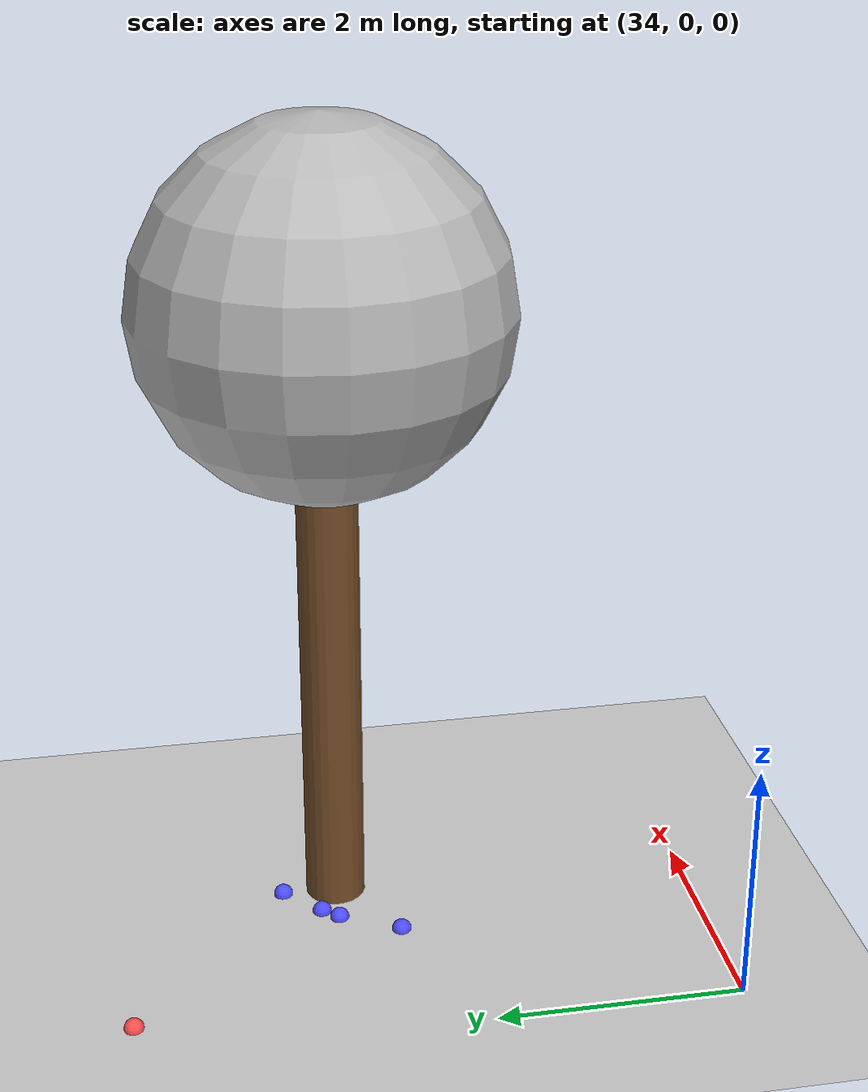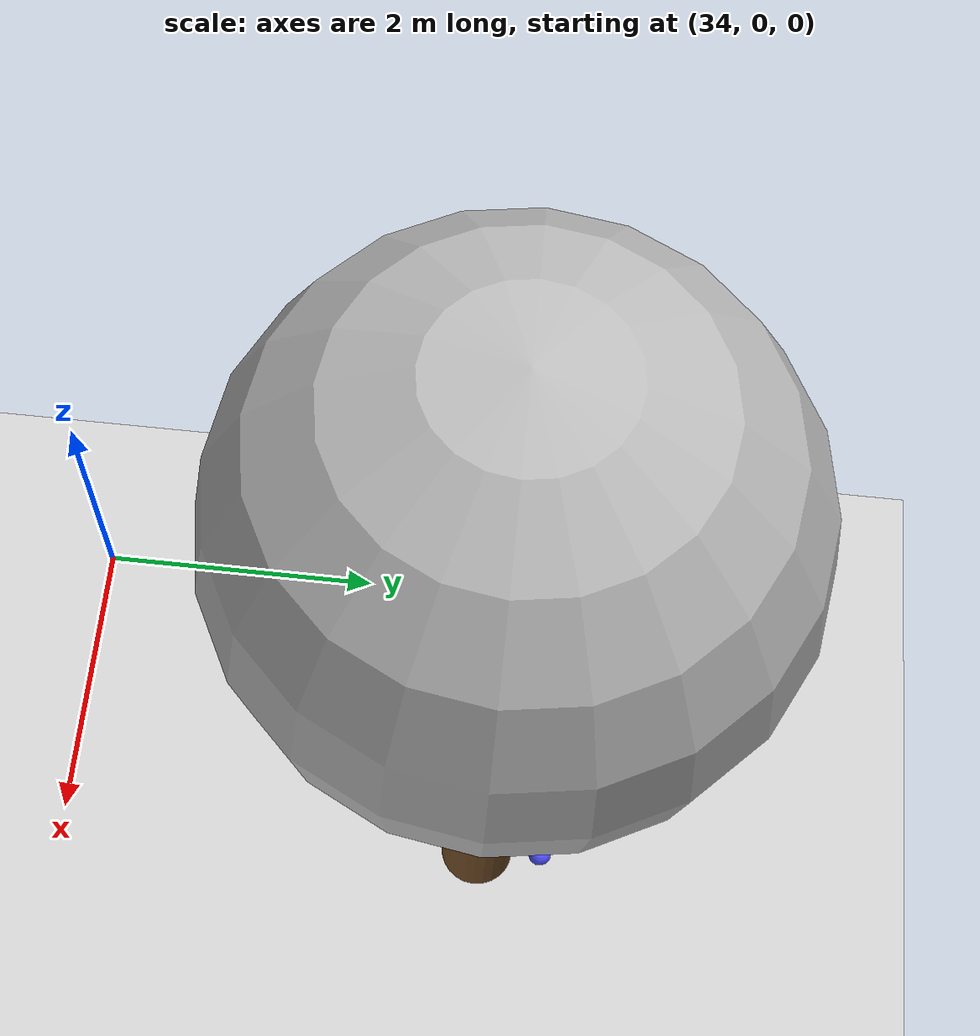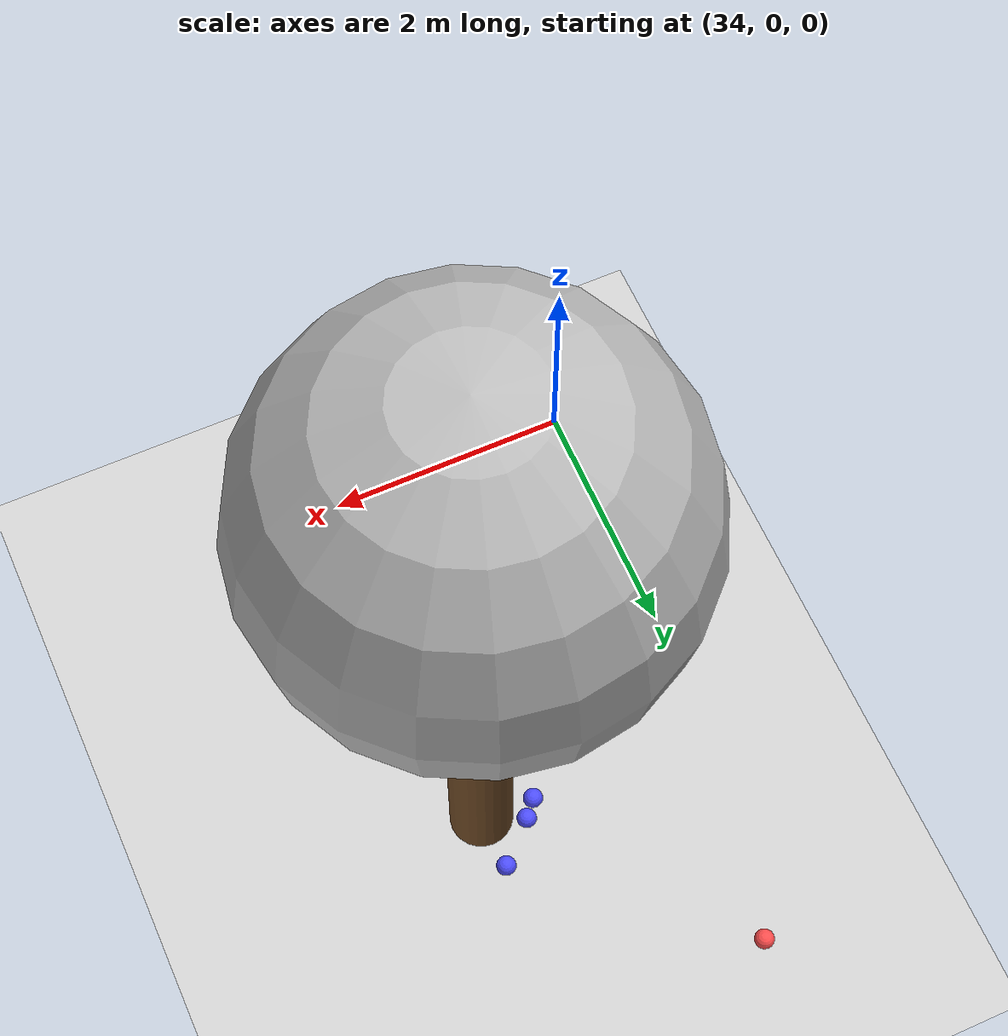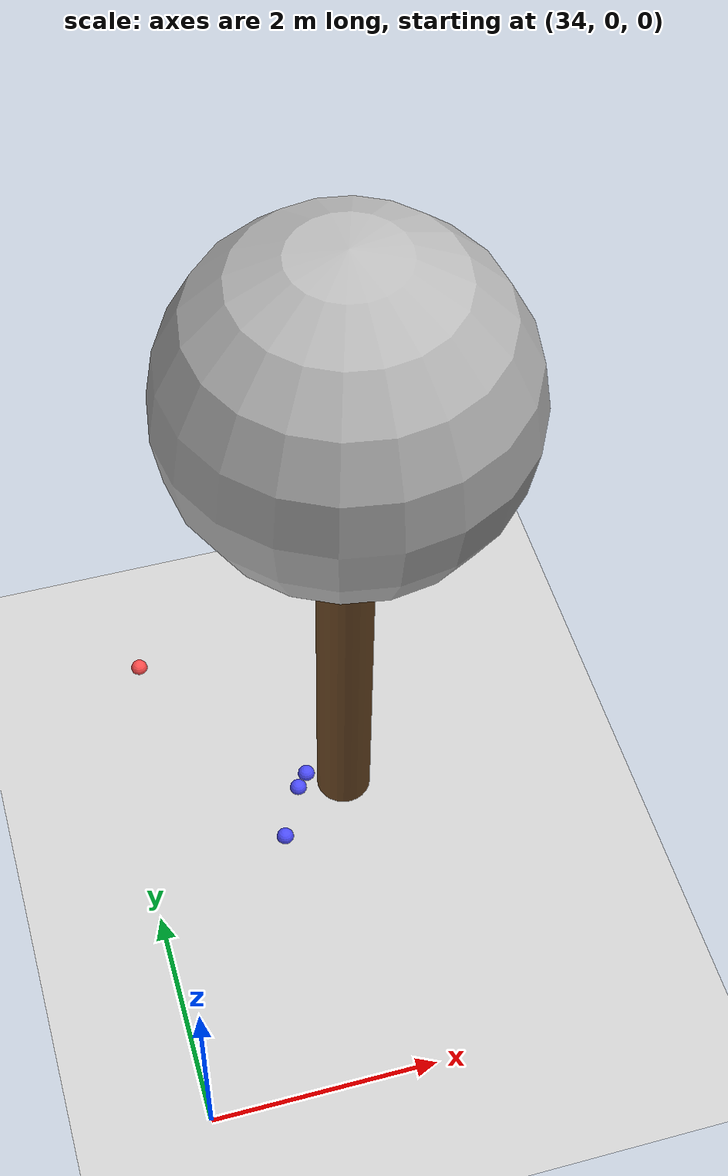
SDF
<sdf version="1.7">
 <world name="default">
  <model name="ground_plane">
   <static>1</static>
   <link name="link">
    <collision name="collision">
     <geometry><plane><normal>0 0 1</normal><size>100 100</size></plane></geometry>
     <surface>
      <contact><collide_bitmask>65535</collide_bitmask></contact>
      <friction><ode><mu>100</mu><mu2>50</mu2></ode></friction>
     </surface>
    </collision>
    <visual name="visual">
     <cast_shadows>0</cast_shadows>
     <geometry><plane><normal>0 0 1</normal><size>100 100</size></plane></geometry>
     <material>
      <script><uri>file://media/materials/scripts/gazebo.material</uri><name>Gazebo/Grey</name></script>
     </material>
    </visual>
   </link>
  </model>
  <model name="tree_simple_91">
   <static>1</static>
   <link name="link">
    <pose>0 0 0.1 0 -0 0</pose>
    <inertial>
     <mass>666</mass>
     <inertia>
      <ixx>0.0861167</ixx>
      <ixy>0</ixy>
      <ixz>0</ixz>
      <iyy>0.0861167</iyy>
      <iyz>0</iyz>
      <izz>0.0861167</izz>
     </inertia>
    </inertial>
    <collision name="collision_trunk">
     <pose>0 0 2 0 -0 0</pose>
     <geometry><cylinder><radius>0.25</radius><length>4</length></cylinder></geometry>
     <surface>
      <contact>
       <poissons_ratio>0.347</poissons_ratio>
       <elastic_modulus>8.8e+09</elastic_modulus>
       <ode><kp>100000</kp><kd>100</kd><max_vel>100</max_vel><min_depth>0.001</min_depth></ode>
      </contact>
      <friction>
       <torsional>
        <coefficient>1</coefficient>
        <use_patch_radius>0</use_patch_radius>
        <surface_radius>0.01</surface_radius>
       </torsional>
      </friction>
     </surface>
    </collision>
    <collision name="collision_treetop">
     <pose>0 0 5.2 0 -0 0</pose>
     <geometry><sphere><radius>1.5</radius></sphere></geometry>
     <surface>
      <contact>
       <poissons_ratio>0.347</poissons_ratio>
       <elastic_modulus>8.8e+09</elastic_modulus>
       <ode><kp>100000</kp><kd>100</kd><max_vel>100</max_vel><min_depth>0.001</min_depth></ode>
      </contact>
      <friction>
       <torsional>
        <coefficient>1</coefficient>
        <use_patch_radius>0</use_patch_radius>
        <surface_radius>0.01</surface_radius>
       </torsional>
      </friction>
     </surface>
    </collision>
    <visual name="trunk">
     <pose>0 0 2 0 -0 0</pose>
     <geometry><cylinder><radius>0.25</radius><length>4</length></cylinder></geometry>
     <material>
      <script>
       <uri>model://tree_simple/scripts</uri>
       <uri>model://tree_simple/materials/textures</uri>
       <name>TreeSimple/Trunk</name>
      </script>
     </material>
    </visual>
    <visual name="treetop">
     <pose>0 0 5.2 0 -0 0</pose>
     <geometry><sphere><radius>1.5</radius></sphere></geometry>
     <material>
      <script>
       <uri>model://tree_simple/scripts</uri>
       <uri>model://tree_simple/materials/textures</uri>
       <name>TreeSimple/Treetop</name>
      </script>
     </material>
    </visual>
   </link>
   <pose>36 3 -0.1 0 -0 0</pose>
  </model>
  <model name="seed_red_340">
   <link name="link">
    <inertial>
     <mass>1</mass>
     <inertia><ixx>0.1</ixx><ixy>0</ixy><ixz>0</ixz><iyy>0.1</iyy><iyz>0</iyz><izz>0.1</izz></inertia>
    </inertial>
    <visual name="visual">
     <geometry><sphere><radius>0.08</radius></sphere></geometry>
     <material>
      <script><name>Gazebo/Grey</name><uri>file://media/materials/scripts/gazebo.material</uri></script>
      <shader type="pixel"><normal_map>__default__</normal_map></shader>
      <ambient>1 0.3 0.3 1</ambient>
      <diffuse>0.7 0.7 0.7 1</diffuse>
      <specular>0.01 0.01 0.01 1</specular>
      <emissive>0 0 0 1</emissive>
     </material>
    </visual>
    <collision name="collision">
     <geometry><sphere><radius>0.0005</radius></sphere></geometry>
     <surface>
      <friction>
       <ode><mu>1</mu><mu2>1</mu2><fdir1>0 0 0</fdir1><slip1>0</slip1><slip2>0</slip2></ode>
       <torsional>
        <coefficient>1</coefficient>
        <patch_radius>0</patch_radius>
        <surface_radius>0</surface_radius>
        <use_patch_radius>1</use_patch_radius>
        <ode><slip>0</slip></ode>
       </torsional>
      </friction>
      <bounce><restitution_coefficient>0</restitution_coefficient><threshold>1e+06</threshold></bounce>
      <contact>
       <collide_without_contact>0</collide_without_contact>
       <collide_without_contact_bitmask>1</collide_without_contact_bitmask>
       <collide_bitmask>1</collide_bitmask>
       <ode>
        <soft_cfm>0</soft_cfm>
        <soft_erp>0.2</soft_erp>
        <kp>1e+13</kp>
        <kd>1</kd>
        <max_vel>0.01</max_vel>
        <min_depth>0</min_depth>
       </ode>
       <bullet>
        <split_impulse>1</split_impulse>
        <split_impulse_penetration_threshold>-0.01</split_impulse_penetration_threshold>
        <soft_cfm>0</soft_cfm>
        <soft_erp>0.2</soft_erp>
        <kp>1e+13</kp>
        <kd>1</kd>
       </bullet>
      </contact>
     </surface>
    </collision>
   </link>
   <static>0</static>
   <pose>34.4009 4.80071 0.0005 0 -0 0</pose>
  </model>
  <model name="seed_blue_187">
   <link name="link">
    <inertial>
     <mass>1</mass>
     <inertia><ixx>0.1</ixx><ixy>0</ixy><ixz>0</ixz><iyy>0.1</iyy><iyz>0</iyz><izz>0.1</izz></inertia>
    </inertial>
    <visual name="visual">
     <geometry><sphere><radius>0.08</radius></sphere></geometry>
     <material>
      <script><name>Gazebo/Grey</name><uri>file://media/materials/scripts/gazebo.material</uri></script>
      <shader type="pixel"><normal_map>__default__</normal_map></shader>
      <ambient>0.3 0.3 1 1</ambient>
      <diffuse>0.7 0.7 0.7 1</diffuse>
      <specular>0.01 0.01 0.01 1</specular>
      <emissive>0 0 0 1</emissive>
     </material>
    </visual>
    <collision name="collision">
     <geometry><sphere><radius>0.0005</radius></sphere></geometry>
     <surface>
      <friction>
       <ode><mu>1</mu><mu2>1</mu2><fdir1>0 0 0</fdir1><slip1>0</slip1><slip2>0</slip2></ode>
       <torsional>
        <coefficient>1</coefficient>
        <patch_radius>0</patch_radius>
        <surface_radius>0</surface_radius>
        <use_patch_radius>1</use_patch_radius>
        <ode><slip>0</slip></ode>
       </torsional>
      </friction>
      <bounce><restitution_coefficient>0</restitution_coefficient><threshold>1e+06</threshold></bounce>
      <contact>
       <collide_without_contact>0</collide_without_contact>
       <collide_without_contact_bitmask>1</collide_without_contact_bitmask>
       <collide_bitmask>1</collide_bitmask>
       <ode>
        <soft_cfm>0</soft_cfm>
        <soft_erp>0.2</soft_erp>
        <kp>1e+13</kp>
        <kd>1</kd>
        <max_vel>0.01</max_vel>
        <min_depth>0</min_depth>
       </ode>
       <bullet>
        <split_impulse>1</split_impulse>
        <split_impulse_penetration_threshold>-0.01</split_impulse_penetration_threshold>
        <soft_cfm>0</soft_cfm>
        <soft_erp>0.2</soft_erp>
        <kp>1e+13</kp>
        <kd>1</kd>
       </bullet>
      </contact>
     </surface>
    </collision>
   </link>
   <static>0</static>
   <pose>35.9845 3.45303 0.0005 0 -0 0</pose>
  </model>
  <model name="seed_blue_188">
   <link name="link">
    <inertial>
     <mass>1</mass>
     <inertia><ixx>0.1</ixx><ixy>0</ixy><ixz>0</ixz><iyy>0.1</iyy><iyz>0</iyz><izz>0.1</izz></inertia>
    </inertial>
    <visual name="visual">
     <geometry><sphere><radius>0.08</radius></sphere></geometry>
     <material>
      <script><name>Gazebo/Grey</name><uri>file://media/materials/scripts/gazebo.material</uri></script>
      <shader type="pixel"><normal_map>__default__</normal_map></shader>
      <ambient>0.3 0.3 1 1</ambient>
      <diffuse>0.7 0.7 0.7 1</diffuse>
      <specular>0.01 0.01 0.01 1</specular>
      <emissive>0 0 0 1</emissive>
     </material>
    </visual>
    <collision name="collision">
     <geometry><sphere><radius>0.0005</radius></sphere></geometry>
     <surface>
      <friction>
       <ode><mu>1</mu><mu2>1</mu2><fdir1>0 0 0</fdir1><slip1>0</slip1><slip2>0</slip2></ode>
       <torsional>
        <coefficient>1</coefficient>
        <patch_radius>0</patch_radius>
        <surface_radius>0</surface_radius>
        <use_patch_radius>1</use_patch_radius>
        <ode><slip>0</slip></ode>
       </torsional>
      </friction>
      <bounce><restitution_coefficient>0</restitution_coefficient><threshold>1e+06</threshold></bounce>
      <contact>
       <collide_without_contact>0</collide_without_contact>
       <collide_without_contact_bitmask>1</collide_without_contact_bitmask>
       <collide_bitmask>1</collide_bitmask>
       <ode>
        <soft_cfm>0</soft_cfm>
        <soft_erp>0.2</soft_erp>
        <kp>1e+13</kp>
        <kd>1</kd>
        <max_vel>0.01</max_vel>
        <min_depth>0</min_depth>
       </ode>
       <bullet>
        <split_impulse>1</split_impulse>
        <split_impulse_penetration_threshold>-0.01</split_impulse_penetration_threshold>
        <soft_cfm>0</soft_cfm>
        <soft_erp>0.2</soft_erp>
        <kp>1e+13</kp>
        <kd>1</kd>
       </bullet>
      </contact>
     </surface>
    </collision>
   </link>
   <static>0</static>
   <pose>35.5634 3.02646 0.0005 0 -0 0</pose>
  </model>
  <model name="seed_blue_189">
   <link name="link">
    <inertial>
     <mass>1</mass>
     <inertia><ixx>0.1</ixx><ixy>0</ixy><ixz>0</ixz><iyy>0.1</iyy><iyz>0</iyz><izz>0.1</izz></inertia>
    </inertial>
    <visual name="visual">
     <geometry><sphere><radius>0.08</radius></sphere></geometry>
     <material>
      <script><name>Gazebo/Grey</name><uri>file://media/materials/scripts/gazebo.material</uri></script>
      <shader type="pixel"><normal_map>__default__</normal_map></shader>
      <ambient>0.3 0.3 1 1</ambient>
      <diffuse>0.7 0.7 0.7 1</diffuse>
      <specular>0.01 0.01 0.01 1</specular>
      <emissive>0 0 0 1</emissive>
     </material>
    </visual>
    <collision name="collision">
     <geometry><sphere><radius>0.0005</radius></sphere></geometry>
     <surface>
      <friction>
       <ode><mu>1</mu><mu2>1</mu2><fdir1>0 0 0</fdir1><slip1>0</slip1><slip2>0</slip2></ode>
       <torsional>
        <coefficient>1</coefficient>
        <patch_radius>0</patch_radius>
        <surface_radius>0</surface_radius>
        <use_patch_radius>1</use_patch_radius>
        <ode><slip>0</slip></ode>
       </torsional>
      </friction>
      <bounce><restitution_coefficient>0</restitution_coefficient><threshold>1e+06</threshold></bounce>
      <contact>
       <collide_without_contact>0</collide_without_contact>
       <collide_without_contact_bitmask>1</collide_without_contact_bitmask>
       <collide_bitmask>1</collide_bitmask>
       <ode>
        <soft_cfm>0</soft_cfm>
        <soft_erp>0.2</soft_erp>
        <kp>1e+13</kp>
        <kd>1</kd>
        <max_vel>0.01</max_vel>
        <min_depth>0</min_depth>
       </ode>
       <bullet>
        <split_impulse>1</split_impulse>
        <split_impulse_penetration_threshold>-0.01</split_impulse_penetration_threshold>
        <soft_cfm>0</soft_cfm>
        <soft_erp>0.2</soft_erp>
        <kp>1e+13</kp>
        <kd>1</kd>
       </bullet>
      </contact>
     </surface>
    </collision>
   </link>
   <static>0</static>
   <pose>35.3075 2.53952 0.0005 0 -0 0</pose>
  </model>
  <model name="seed_blue_191">
   <link name="link">
    <inertial>
     <mass>1</mass>
     <inertia><ixx>0.1</ixx><ixy>0</ixy><ixz>0</ixz><iyy>0.1</iyy><iyz>0</iyz><izz>0.1</izz></inertia>
    </inertial>
    <visual name="visual">
     <geometry><sphere><radius>0.08</radius></sphere></geometry>
     <material>
      <script><name>Gazebo/Grey</name><uri>file://media/materials/scripts/gazebo.material</uri></script>
      <shader type="pixel"><normal_map>__default__</normal_map></shader>
      <ambient>0.3 0.3 1 1</ambient>
      <diffuse>0.7 0.7 0.7 1</diffuse>
      <specular>0.01 0.01 0.01 1</specular>
      <emissive>0 0 0 1</emissive>
     </material>
    </visual>
    <collision name="collision">
     <geometry><sphere><radius>0.0005</radius></sphere></geometry>
     <surface>
      <friction>
       <ode><mu>1</mu><mu2>1</mu2><fdir1>0 0 0</fdir1><slip1>0</slip1><slip2>0</slip2></ode>
       <torsional>
        <coefficient>1</coefficient>
        <patch_radius>0</patch_radius>
        <surface_radius>0</surface_radius>
        <use_patch_radius>1</use_patch_radius>
        <ode><slip>0</slip></ode>
       </torsional>
      </friction>
      <bounce><restitution_coefficient>0</restitution_coefficient><threshold>1e+06</threshold></bounce>
      <contact>
       <collide_without_contact>0</collide_without_contact>
       <collide_without_contact_bitmask>1</collide_without_contact_bitmask>
       <collide_bitmask>1</collide_bitmask>
       <ode>
        <soft_cfm>0</soft_cfm>
        <soft_erp>0.2</soft_erp>
        <kp>1e+13</kp>
        <kd>1</kd>
        <max_vel>0.01</max_vel>
        <min_depth>0</min_depth>
       </ode>
       <bullet>
        <split_impulse>1</split_impulse>
        <split_impulse_penetration_threshold>-0.01</split_impulse_penetration_threshold>
        <soft_cfm>0</soft_cfm>
        <soft_erp>0.2</soft_erp>
        <kp>1e+13</kp>
        <kd>1</kd>
       </bullet>
      </contact>
     </surface>
    </collision>
   </link>
   <static>0</static>
   <pose>35.6772 3.15956 0.0005 0 -0 0</pose>
  </model>
 </world>
</sdf>
